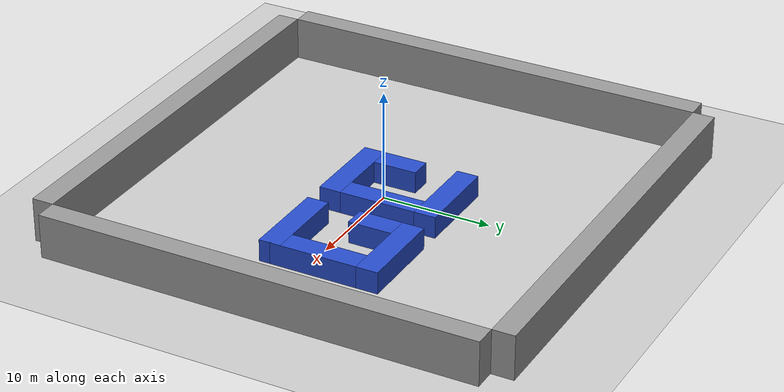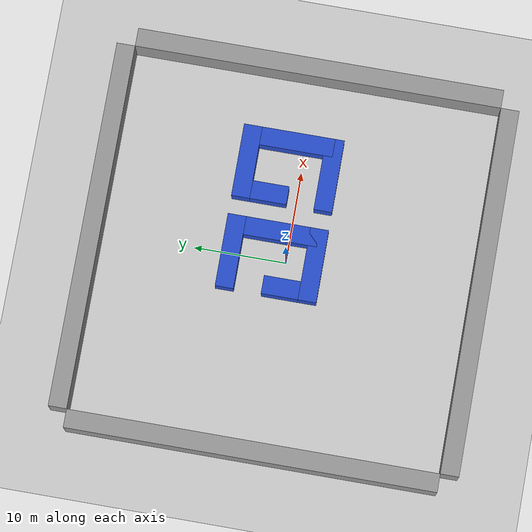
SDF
<sdf version="1.6">
 <world name="default">
  <light name="sun" type="directional">
   <pose>0 0 10 0 -0 0</pose>
   <diffuse>0.8 0.8 0.8 1</diffuse>
   <specular>0.1 0.1 0.1 1</specular>
   <attenuation>
    <range>1000</range>
    <constant>0.9</constant>
    <linear>0.01</linear>
    <quadratic>0.001</quadratic>
   </attenuation>
   <direction>-0.5 0.5 -1</direction>
  </light>
  <model name="ground_plane">
   <static>1</static>
   <link name="link">
    <collision name="collision">
     <geometry><plane><normal>0 0 1</normal><size>100 100</size></plane></geometry>
     <surface><friction><ode><mu>100</mu><mu2>50</mu2></ode></friction></surface>
    </collision>
    <visual name="visual">
     <cast_shadows>0</cast_shadows>
     <geometry><plane><normal>0 0 1</normal><size>100 100</size></plane></geometry>
     <material>
      <script><uri>file://media/materials/scripts/gazebo.material</uri><name>Gazebo/Grey</name></script>
     </material>
    </visual>
   </link>
  </model>
  <gravity>0 0 -9.8</gravity>
  <magnetic_field>6e-06 2.3e-05 -4.2e-05</magnetic_field>
  <atmosphere type="adiabatic"/>
  <physics name="default_physics" default="0" type="ode">
   <max_step_size>0.001</max_step_size>
   <real_time_factor>1</real_time_factor>
   <real_time_update_rate>1000</real_time_update_rate>
  </physics>
  <scene><ambient>0.4 0.4 0.4 1</ambient><background>0.7 0.7 0.7 1</background><shadows>1</shadows></scene>
  <spherical_coordinates>
   <surface_model>EARTH_WGS84</surface_model>
   <latitude_deg>0</latitude_deg>
   <longitude_deg>0</longitude_deg>
   <elevation>0</elevation>
   <heading_deg>0</heading_deg>
  </spherical_coordinates>
  <model name="unit_box_0">
   <static>1</static>
   <pose>0 21 2 0 -0 0</pose>
   <link name="link">
    <inertial>
     <mass>1</mass>
     <inertia>
      <ixx>0.166667</ixx>
      <ixy>0</ixy>
      <ixz>0</ixz>
      <iyy>0.166667</iyy>
      <iyz>0</iyz>
      <izz>0.166667</izz>
     </inertia>
    </inertial>
    <collision name="collision"><geometry><box><size>40 2 4</size></box></geometry></collision>
    <visual name="visual">
     <cast_shadows>0</cast_shadows>
     <geometry><box><size>40 2 4</size></box></geometry>
     <material>
      <script><name>Gazebo/Grey</name><uri>file://media/materials/scripts/gazebo.material</uri></script>
     </material>
    </visual>
    <gravity>0</gravity>
   </link>
  </model>
  <model name="unit_box_1">
   <static>1</static>
   <pose>0 -21 2 0 -0 0</pose>
   <link name="link">
    <inertial>
     <mass>1</mass>
     <inertia>
      <ixx>0.166667</ixx>
      <ixy>0</ixy>
      <ixz>0</ixz>
      <iyy>0.166667</iyy>
      <iyz>0</iyz>
      <izz>0.166667</izz>
     </inertia>
    </inertial>
    <collision name="collision"><geometry><box><size>40 2 4</size></box></geometry></collision>
    <visual name="visual">
     <cast_shadows>0</cast_shadows>
     <geometry><box><size>40 2 4</size></box></geometry>
     <material>
      <script><name>Gazebo/Grey</name><uri>file://media/materials/scripts/gazebo.material</uri></script>
     </material>
    </visual>
    <gravity>0</gravity>
   </link>
  </model>
  <model name="unit_box_2">
   <static>1</static>
   <pose>21 0 2 0 -0 0</pose>
   <link name="link">
    <inertial>
     <mass>1</mass>
     <inertia>
      <ixx>0.166667</ixx>
      <ixy>0</ixy>
      <ixz>0</ixz>
      <iyy>0.166667</iyy>
      <iyz>0</iyz>
      <izz>0.166667</izz>
     </inertia>
    </inertial>
    <collision name="collision"><geometry><box><size>2 40 4</size></box></geometry></collision>
    <visual name="visual">
     <cast_shadows>0</cast_shadows>
     <geometry><box><size>2 40 4</size></box></geometry>
     <material>
      <script><name>Gazebo/Grey</name><uri>file://media/materials/scripts/gazebo.material</uri></script>
     </material>
    </visual>
    <gravity>0</gravity>
   </link>
  </model>
  <model name="unit_box_3">
   <static>1</static>
   <pose>-21 0 2 0 -0 0</pose>
   <link name="link">
    <inertial>
     <mass>1</mass>
     <inertia>
      <ixx>0.166667</ixx>
      <ixy>0</ixy>
      <ixz>0</ixz>
      <iyy>0.166667</iyy>
      <iyz>0</iyz>
      <izz>0.166667</izz>
     </inertia>
    </inertial>
    <collision name="collision"><geometry><box><size>2 40 4</size></box></geometry></collision>
    <visual name="visual">
     <cast_shadows>0</cast_shadows>
     <geometry><box><size>2 40 4</size></box></geometry>
     <material>
      <script><name>Gazebo/Grey</name><uri>file://media/materials/scripts/gazebo.material</uri></script>
     </material>
    </visual>
    <gravity>0</gravity>
   </link>
  </model>
  <model name="unit_box_4">
   <static>1</static>
   <pose>3 1 1 0 -0 0</pose>
   <link name="link">
    <inertial>
     <mass>1</mass>
     <inertia>
      <ixx>0.166667</ixx>
      <ixy>0</ixy>
      <ixz>0</ixz>
      <iyy>0.166667</iyy>
      <iyz>0</iyz>
      <izz>0.166667</izz>
     </inertia>
    </inertial>
    <collision name="collision"><geometry><box><size>2 8 2</size></box></geometry></collision>
    <visual name="visual">
     <cast_shadows>0</cast_shadows>
     <geometry><box><size>2 8 2</size></box></geometry>
     <material>
      <script><name>Gazebo/Blue</name><uri>file://media/materials/scripts/gazebo.material</uri></script>
     </material>
    </visual>
    <gravity>0</gravity>
   </link>
  </model>
  <model name="unit_box_5">
   <static>1</static>
   <pose>0 6 1 0 -0 0</pose>
   <link name="link">
    <inertial>
     <mass>1</mass>
     <inertia>
      <ixx>0.166667</ixx>
      <ixy>0</ixy>
      <ixz>0</ixz>
      <iyy>0.166667</iyy>
      <iyz>0</iyz>
      <izz>0.166667</izz>
     </inertia>
    </inertial>
    <collision name="collision"><geometry><box><size>8 2 2</size></box></geometry></collision>
    <visual name="visual">
     <cast_shadows>0</cast_shadows>
     <geometry><box><size>8 2 2</size></box></geometry>
     <material>
      <script><name>Gazebo/Blue</name><uri>file://media/materials/scripts/gazebo.material</uri></script>
     </material>
    </visual>
    <gravity>0</gravity>
   </link>
  </model>
  <model name="unit_box_6">
   <static>1</static>
   <pose>0 -3 1 0 -0 0</pose>
   <link name="link">
    <inertial>
     <mass>1</mass>
     <inertia>
      <ixx>0.166667</ixx>
      <ixy>0</ixy>
      <ixz>0</ixz>
      <iyy>0.166667</iyy>
      <iyz>0</iyz>
      <izz>0.166667</izz>
     </inertia>
    </inertial>
    <collision name="collision"><geometry><box><size>8 2 2</size></box></geometry></collision>
    <visual name="visual">
     <cast_shadows>0</cast_shadows>
     <geometry><box><size>8 2 2</size></box></geometry>
     <material>
      <script><name>Gazebo/Blue</name><uri>file://media/materials/scripts/gazebo.material</uri></script>
     </material>
    </visual>
    <gravity>0</gravity>
   </link>
  </model>
  <model name="unit_box_7">
   <static>1</static>
   <pose>-3 0 1 0 -0 0</pose>
   <link name="link">
    <inertial>
     <mass>1</mass>
     <inertia>
      <ixx>0.166667</ixx>
      <ixy>0</ixy>
      <ixz>0</ixz>
      <iyy>0.166667</iyy>
      <iyz>0</iyz>
      <izz>0.166667</izz>
     </inertia>
    </inertial>
    <collision name="collision"><geometry><box><size>2 4 2</size></box></geometry></collision>
    <visual name="visual">
     <cast_shadows>0</cast_shadows>
     <geometry><box><size>2 4 2</size></box></geometry>
     <material>
      <script><name>Gazebo/Blue</name><uri>file://media/materials/scripts/gazebo.material</uri></script>
     </material>
    </visual>
    <gravity>0</gravity>
   </link>
  </model>
  <model name="unit_box_8">
   <static>1</static>
   <pose>13 1 1 0 -0 0</pose>
   <link name="link">
    <inertial>
     <mass>1</mass>
     <inertia>
      <ixx>0.166667</ixx>
      <ixy>0</ixy>
      <ixz>0</ixz>
      <iyy>0.166667</iyy>
      <iyz>0</iyz>
      <izz>0.166667</izz>
     </inertia>
    </inertial>
    <collision name="collision"><geometry><box><size>2 8 2</size></box></geometry></collision>
    <visual name="visual">
     <cast_shadows>0</cast_shadows>
     <geometry><box><size>2 8 2</size></box></geometry>
     <material>
      <script><name>Gazebo/Blue</name><uri>file://media/materials/scripts/gazebo.material</uri></script>
     </material>
    </visual>
    <gravity>0</gravity>
   </link>
  </model>
  <model name="unit_box_9">
   <static>1</static>
   <pose>10 6 1 0 -0 0</pose>
   <link name="link">
    <inertial>
     <mass>1</mass>
     <inertia>
      <ixx>0.166667</ixx>
      <ixy>0</ixy>
      <ixz>0</ixz>
      <iyy>0.166667</iyy>
      <iyz>0</iyz>
      <izz>0.166667</izz>
     </inertia>
    </inertial>
    <collision name="collision"><geometry><box><size>8 2 2</size></box></geometry></collision>
    <visual name="visual">
     <cast_shadows>0</cast_shadows>
     <geometry><box><size>8 2 2</size></box></geometry>
     <material>
      <script><name>Gazebo/Blue</name><uri>file://media/materials/scripts/gazebo.material</uri></script>
     </material>
    </visual>
    <gravity>0</gravity>
   </link>
  </model>
  <model name="unit_box_10">
   <static>1</static>
   <pose>10 -3 1 0 -0 0</pose>
   <link name="link">
    <inertial>
     <mass>1</mass>
     <inertia>
      <ixx>0.166667</ixx>
      <ixy>0</ixy>
      <ixz>0</ixz>
      <iyy>0.166667</iyy>
      <iyz>0</iyz>
      <izz>0.166667</izz>
     </inertia>
    </inertial>
    <collision name="collision"><geometry><box><size>8 2 2</size></box></geometry></collision>
    <visual name="visual">
     <cast_shadows>0</cast_shadows>
     <geometry><box><size>8 2 2</size></box></geometry>
     <material>
      <script><name>Gazebo/Blue</name><uri>file://media/materials/scripts/gazebo.material</uri></script>
     </material>
    </visual>
    <gravity>0</gravity>
   </link>
  </model>
  <model name="unit_box_11">
   <static>1</static>
   <pose>7 3 1 0 -0 0</pose>
   <link name="link">
    <inertial>
     <mass>1</mass>
     <inertia>
      <ixx>0.166667</ixx>
      <ixy>0</ixy>
      <ixz>0</ixz>
      <iyy>0.166667</iyy>
      <iyz>0</iyz>
      <izz>0.166667</izz>
     </inertia>
    </inertial>
    <collision name="collision"><geometry><box><size>2 4 2</size></box></geometry></collision>
    <visual name="visual">
     <cast_shadows>0</cast_shadows>
     <geometry><box><size>2 4 2</size></box></geometry>
     <material>
      <script><name>Gazebo/Blue</name><uri>file://media/materials/scripts/gazebo.material</uri></script>
     </material>
    </visual>
    <gravity>0</gravity>
   </link>
  </model>
 </world>
</sdf>
